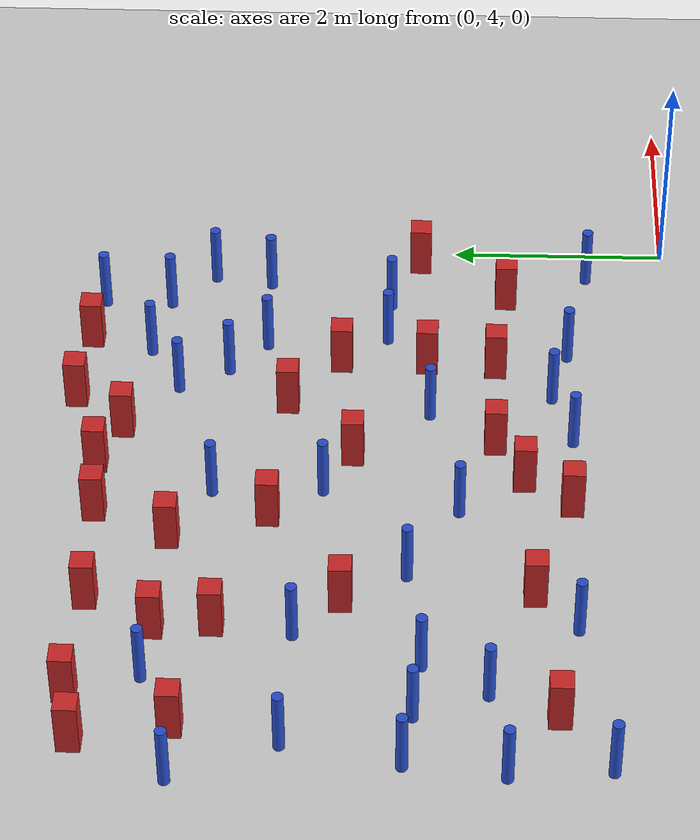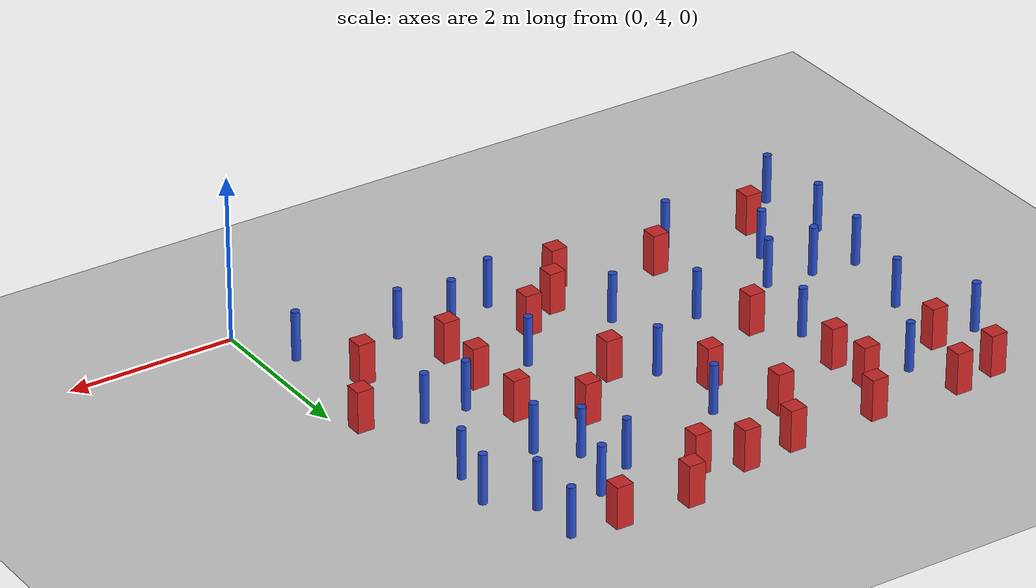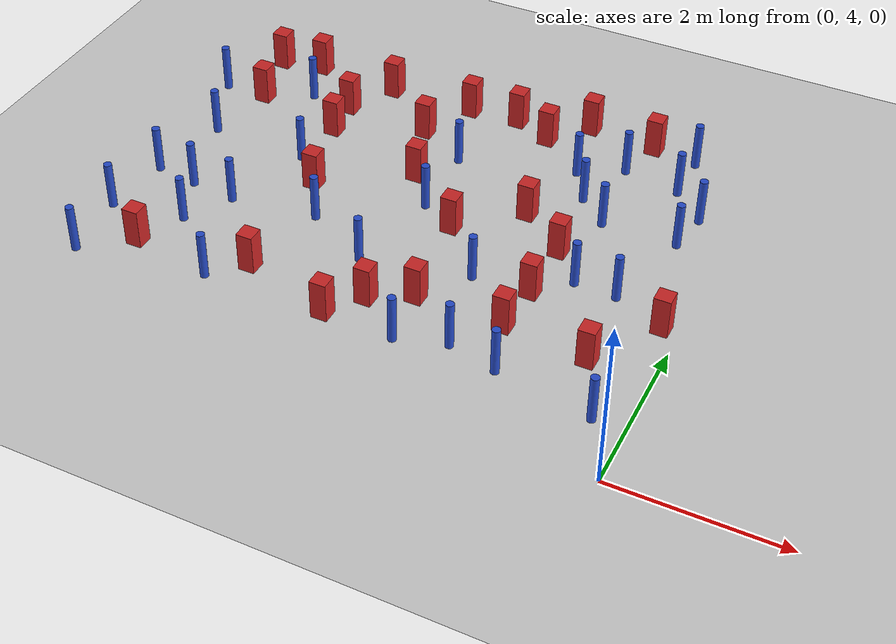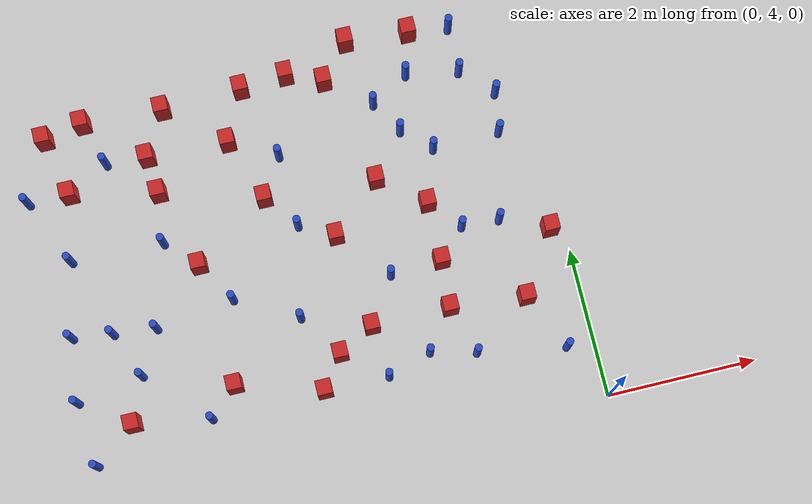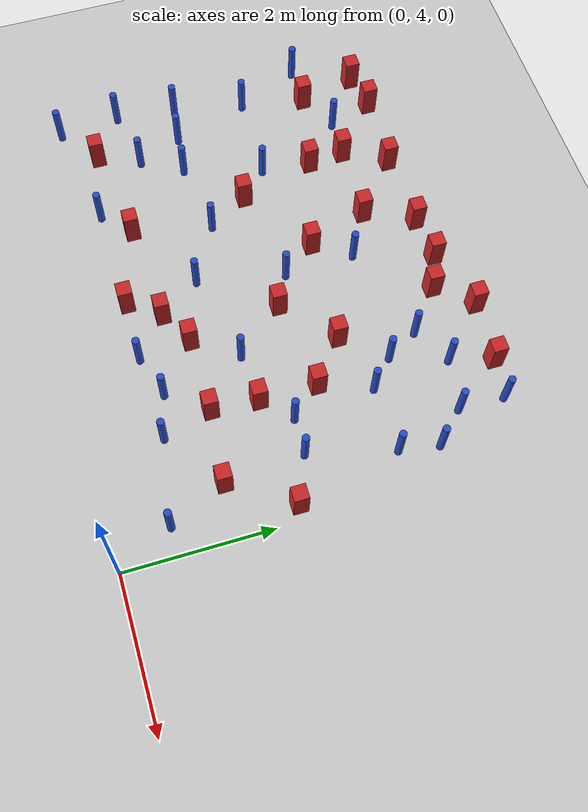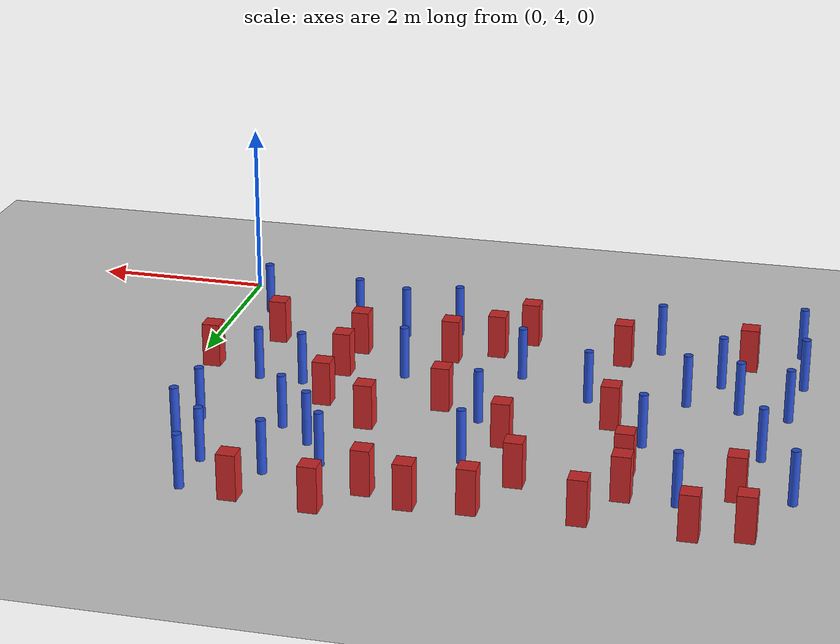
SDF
<sdf version="1.6">
 <world name="default">
  <model name="ground_plane">
   <static>1</static>
   <link name="link">
    <collision name="collision">
     <geometry><plane><normal>0 0 1</normal><size>100 100</size></plane></geometry>
     <surface><friction><ode><mu>100</mu><mu2>50</mu2></ode></friction></surface>
    </collision>
    <visual name="visual">
     <cast_shadows>0</cast_shadows>
     <geometry><plane><normal>0 0 1</normal><size>100 100</size></plane></geometry>
     <material>
      <ambient>1.0 1.0 1.0 1.0</ambient>
      <diffuse>0.8 0.8 0.8 1.0</diffuse>
      <specular>0.01 0.01 0.01 1.000000</specular>
     </material>
    </visual>
   </link>
  </model>
  <model name="pole_obstacle1">
   <static>true</static>
   <pose>-1.56777088744 8.84587682471 -9.47619616065e-06 5.49618799737e-07 2.36310414046e-07 -1.55090534809e-07</pose>
   <link name="link">
    <pose>0 0 0.3 0 -0 0</pose>
    <inertial>
     <mass>1</mass>
     <inertia><ixx>0.145833</ixx><ixy>0</ixy><ixz>0</ixz><iyy>0.145833</iyy><iyz>0</iyz><izz>0.125</izz></inertia>
    </inertial>
    <collision name="collision">
     <geometry><cylinder><radius>0.05</radius><length>.6</length></cylinder></geometry>
    </collision>
    <visual name="visual">
     <geometry><cylinder><radius>0.05</radius><length>.6</length></cylinder></geometry>
     <material>
      <script><name>Gazebo/Blue</name><uri>file://media/materials/scripts/gazebo.material</uri></script>
     </material>
    </visual>
   </link>
  </model>
  <model name="square_post_obstacle4">
   <static>true</static>
   <pose>-5.20350773241 8.5334468349 -6.11067671241e-07 -5.50515727128e-06 -8.79689657224e-07 2.37013304536e-05</pose>
   <link name="link">
    <pose>0 0 0.25 0 -0 0</pose>
    <inertial>
     <mass>100</mass>
     <inertia>
      <ixx>0.166667</ixx>
      <ixy>0</ixy>
      <ixz>0</ixz>
      <iyy>0.166667</iyy>
      <iyz>0</iyz>
      <izz>0.166667</izz>
     </inertia>
    </inertial>
    <collision name="collision"><geometry><box><size>.2 .2 .5</size></box></geometry></collision>
    <visual name="visual">
     <geometry><box><size>.2 .2 .5</size></box></geometry>
     <material>
      <script><name>Gazebo/Red</name><uri>file://media/materials/scripts/gazebo.material</uri></script>
     </material>
    </visual>
   </link>
  </model>
  <model name="square_post_obstacle9">
   <static>true</static>
   <pose>-2.26329625122 9.47919914897 -6.11067671241e-07 -5.50515727128e-06 -8.79689657224e-07 2.37013304536e-05</pose>
   <link name="link">
    <pose>0 0 0.25 0 -0 0</pose>
    <inertial>
     <mass>100</mass>
     <inertia>
      <ixx>0.166667</ixx>
      <ixy>0</ixy>
      <ixz>0</ixz>
      <iyy>0.166667</iyy>
      <iyz>0</iyz>
      <izz>0.166667</izz>
     </inertia>
    </inertial>
    <collision name="collision"><geometry><box><size>.2 .2 .5</size></box></geometry></collision>
    <visual name="visual">
     <geometry><box><size>.2 .2 .5</size></box></geometry>
     <material>
      <script><name>Gazebo/Red</name><uri>file://media/materials/scripts/gazebo.material</uri></script>
     </material>
    </visual>
   </link>
  </model>
  <model name="square_post_obstacle15">
   <static>true</static>
   <pose>-2.80714113025 5.61509971107 -6.11067671241e-07 -5.50515727128e-06 -8.79689657224e-07 2.37013304536e-05</pose>
   <link name="link">
    <pose>0 0 0.25 0 -0 0</pose>
    <inertial>
     <mass>100</mass>
     <inertia>
      <ixx>0.166667</ixx>
      <ixy>0</ixy>
      <ixz>0</ixz>
      <iyy>0.166667</iyy>
      <iyz>0</iyz>
      <izz>0.166667</izz>
     </inertia>
    </inertial>
    <collision name="collision"><geometry><box><size>.2 .2 .5</size></box></geometry></collision>
    <visual name="visual">
     <geometry><box><size>.2 .2 .5</size></box></geometry>
     <material>
      <script><name>Gazebo/Red</name><uri>file://media/materials/scripts/gazebo.material</uri></script>
     </material>
    </visual>
   </link>
  </model>
  <model name="square_post_obstacle18">
   <static>true</static>
   <pose>-4.72708501513 5.27083126233 -6.11067671241e-07 -5.50515727128e-06 -8.79689657224e-07 2.37013304536e-05</pose>
   <link name="link">
    <pose>0 0 0.25 0 -0 0</pose>
    <inertial>
     <mass>100</mass>
     <inertia>
      <ixx>0.166667</ixx>
      <ixy>0</ixy>
      <ixz>0</ixz>
      <iyy>0.166667</iyy>
      <iyz>0</iyz>
      <izz>0.166667</izz>
     </inertia>
    </inertial>
    <collision name="collision"><geometry><box><size>.2 .2 .5</size></box></geometry></collision>
    <visual name="visual">
     <geometry><box><size>.2 .2 .5</size></box></geometry>
     <material>
      <script><name>Gazebo/Red</name><uri>file://media/materials/scripts/gazebo.material</uri></script>
     </material>
    </visual>
   </link>
  </model>
  <model name="square_post_obstacle20">
   <static>true</static>
   <pose>-4.10968657314 8.48709137153 -6.11067671241e-07 -5.50515727128e-06 -8.79689657224e-07 2.37013304536e-05</pose>
   <link name="link">
    <pose>0 0 0.25 0 -0 0</pose>
    <inertial>
     <mass>100</mass>
     <inertia>
      <ixx>0.166667</ixx>
      <ixy>0</ixy>
      <ixz>0</ixz>
      <iyy>0.166667</iyy>
      <iyz>0</iyz>
      <izz>0.166667</izz>
     </inertia>
    </inertial>
    <collision name="collision"><geometry><box><size>.2 .2 .5</size></box></geometry></collision>
    <visual name="visual">
     <geometry><box><size>.2 .2 .5</size></box></geometry>
     <material>
      <script><name>Gazebo/Red</name><uri>file://media/materials/scripts/gazebo.material</uri></script>
     </material>
    </visual>
   </link>
  </model>
  <model name="square_post_obstacle26">
   <static>true</static>
   <pose>-2.99052652677 6.90192373108 -6.11067671241e-07 -5.50515727128e-06 -8.79689657224e-07 2.37013304536e-05</pose>
   <link name="link">
    <pose>0 0 0.25 0 -0 0</pose>
    <inertial>
     <mass>100</mass>
     <inertia>
      <ixx>0.166667</ixx>
      <ixy>0</ixy>
      <ixz>0</ixz>
      <iyy>0.166667</iyy>
      <iyz>0</iyz>
      <izz>0.166667</izz>
     </inertia>
    </inertial>
    <collision name="collision"><geometry><box><size>.2 .2 .5</size></box></geometry></collision>
    <visual name="visual">
     <geometry><box><size>.2 .2 .5</size></box></geometry>
     <material>
      <script><name>Gazebo/Red</name><uri>file://media/materials/scripts/gazebo.material</uri></script>
     </material>
    </visual>
   </link>
  </model>
  <model name="square_post_obstacle29">
   <static>true</static>
   <pose>-3.15361970309 9.21228666689 -6.11067671241e-07 -5.50515727128e-06 -8.79689657224e-07 2.37013304536e-05</pose>
   <link name="link">
    <pose>0 0 0.25 0 -0 0</pose>
    <inertial>
     <mass>100</mass>
     <inertia>
      <ixx>0.166667</ixx>
      <ixy>0</ixy>
      <ixz>0</ixz>
      <iyy>0.166667</iyy>
      <iyz>0</iyz>
      <izz>0.166667</izz>
     </inertia>
    </inertial>
    <collision name="collision"><geometry><box><size>.2 .2 .5</size></box></geometry></collision>
    <visual name="visual">
     <geometry><box><size>.2 .2 .5</size></box></geometry>
     <material>
      <script><name>Gazebo/Red</name><uri>file://media/materials/scripts/gazebo.material</uri></script>
     </material>
    </visual>
   </link>
  </model>
  <model name="square_post_obstacle31">
   <static>true</static>
   <pose>-1.40879890183 9.41600144967 -6.11067671241e-07 -5.50515727128e-06 -8.79689657224e-07 2.37013304536e-05</pose>
   <link name="link">
    <pose>0 0 0.25 0 -0 0</pose>
    <inertial>
     <mass>100</mass>
     <inertia>
      <ixx>0.166667</ixx>
      <ixy>0</ixy>
      <ixz>0</ixz>
      <iyy>0.166667</iyy>
      <iyz>0</iyz>
      <izz>0.166667</izz>
     </inertia>
    </inertial>
    <collision name="collision"><geometry><box><size>.2 .2 .5</size></box></geometry></collision>
    <visual name="visual">
     <geometry><box><size>.2 .2 .5</size></box></geometry>
     <material>
      <script><name>Gazebo/Red</name><uri>file://media/materials/scripts/gazebo.material</uri></script>
     </material>
    </visual>
   </link>
  </model>
  <model name="pole_obstacle25">
   <static>true</static>
   <pose>-0.854031839209 9.34923897884 -9.47619616065e-06 5.49618799737e-07 2.36310414038e-07 -1.55090534813e-07</pose>
   <link name="link">
    <pose>0 0 0.3 0 -0 0</pose>
    <inertial>
     <mass>1</mass>
     <inertia><ixx>0.145833</ixx><ixy>0</ixy><ixz>0</ixz><iyy>0.145833</iyy><iyz>0</iyz><izz>0.125</izz></inertia>
    </inertial>
    <collision name="collision">
     <geometry><cylinder><radius>0.05</radius><length>.6</length></cylinder></geometry>
    </collision>
    <visual name="visual">
     <geometry><cylinder><radius>0.05</radius><length>.6</length></cylinder></geometry>
     <material>
      <script><name>Gazebo/Blue</name><uri>file://media/materials/scripts/gazebo.material</uri></script>
     </material>
    </visual>
   </link>
  </model>
  <model name="pole_obstacle28">
   <static>true</static>
   <pose>-1.54285895914 4.94095196369 -9.47619616065e-06 5.49618799737e-07 2.36310414061e-07 -1.550905348e-07</pose>
   <link name="link">
    <pose>0 0 0.3 0 -0 0</pose>
    <inertial>
     <mass>1</mass>
     <inertia><ixx>0.145833</ixx><ixy>0</ixy><ixz>0</ixz><iyy>0.145833</iyy><iyz>0</iyz><izz>0.125</izz></inertia>
    </inertial>
    <collision name="collision">
     <geometry><cylinder><radius>0.05</radius><length>.6</length></cylinder></geometry>
    </collision>
    <visual name="visual">
     <geometry><cylinder><radius>0.05</radius><length>.6</length></cylinder></geometry>
     <material>
      <script><name>Gazebo/Blue</name><uri>file://media/materials/scripts/gazebo.material</uri></script>
     </material>
    </visual>
   </link>
  </model>
  <model name="pole_obstacle36">
   <static>true</static>
   <pose>-3.48432030494 8.14019870733 -9.47619616065e-06 5.49618799738e-07 2.36310414059e-07 -1.55090534802e-07</pose>
   <link name="link">
    <pose>0 0 0.3 0 -0 0</pose>
    <inertial>
     <mass>1</mass>
     <inertia><ixx>0.145833</ixx><ixy>0</ixy><ixz>0</ixz><iyy>0.145833</iyy><iyz>0</iyz><izz>0.125</izz></inertia>
    </inertial>
    <collision name="collision">
     <geometry><cylinder><radius>0.05</radius><length>.6</length></cylinder></geometry>
    </collision>
    <visual name="visual">
     <geometry><cylinder><radius>0.05</radius><length>.6</length></cylinder></geometry>
     <material>
      <script><name>Gazebo/Blue</name><uri>file://media/materials/scripts/gazebo.material</uri></script>
     </material>
    </visual>
   </link>
  </model>
  <model name="pole_obstacle38">
   <static>true</static>
   <pose>-1.45010936316 7.75743445892 -9.47619616065e-06 5.49618799737e-07 2.36310414061e-07 -1.550905348e-07</pose>
   <link name="link">
    <pose>0 0 0.3 0 -0 0</pose>
    <inertial>
     <mass>1</mass>
     <inertia><ixx>0.145833</ixx><ixy>0</ixy><ixz>0</ixz><iyy>0.145833</iyy><iyz>0</iyz><izz>0.125</izz></inertia>
    </inertial>
    <collision name="collision">
     <geometry><cylinder><radius>0.05</radius><length>.6</length></cylinder></geometry>
    </collision>
    <visual name="visual">
     <geometry><cylinder><radius>0.05</radius><length>.6</length></cylinder></geometry>
     <material>
      <script><name>Gazebo/Blue</name><uri>file://media/materials/scripts/gazebo.material</uri></script>
     </material>
    </visual>
   </link>
  </model>
  <model name="pole_obstacle39">
   <static>true</static>
   <pose>-0.539554813916 7.77577279398 -9.47619616065e-06 5.49618799737e-07 2.36310414069e-07 -1.55090534794e-07</pose>
   <link name="link">
    <pose>0 0 0.3 0 -0 0</pose>
    <inertial>
     <mass>1</mass>
     <inertia><ixx>0.145833</ixx><ixy>0</ixy><ixz>0</ixz><iyy>0.145833</iyy><iyz>0</iyz><izz>0.125</izz></inertia>
    </inertial>
    <collision name="collision">
     <geometry><cylinder><radius>0.05</radius><length>.6</length></cylinder></geometry>
    </collision>
    <visual name="visual">
     <geometry><cylinder><radius>0.05</radius><length>.6</length></cylinder></geometry>
     <material>
      <script><name>Gazebo/Blue</name><uri>file://media/materials/scripts/gazebo.material</uri></script>
     </material>
    </visual>
   </link>
  </model>
  <model name="pole_obstacle50">
   <static>true</static>
   <pose>-5.10855099215 4.90134940927 -9.47619616065e-06 5.49618799737e-07 2.36310414037e-07 -1.55090534814e-07</pose>
   <link name="link">
    <pose>0 0 0.3 0 -0 0</pose>
    <inertial>
     <mass>1</mass>
     <inertia><ixx>0.145833</ixx><ixy>0</ixy><ixz>0</ixz><iyy>0.145833</iyy><iyz>0</iyz><izz>0.125</izz></inertia>
    </inertial>
    <collision name="collision">
     <geometry><cylinder><radius>0.05</radius><length>.6</length></cylinder></geometry>
    </collision>
    <visual name="visual">
     <geometry><cylinder><radius>0.05</radius><length>.6</length></cylinder></geometry>
     <material>
      <script><name>Gazebo/Blue</name><uri>file://media/materials/scripts/gazebo.material</uri></script>
     </material>
    </visual>
   </link>
  </model>
  <model name="pole_obstacle61">
   <static>true</static>
   <pose>-6.68802483344 4.64940047304 -9.47619616065e-06 5.49618799737e-07 2.36310414037e-07 -1.55090534814e-07</pose>
   <link name="link">
    <pose>0 0 0.3 0 -0 0</pose>
    <inertial>
     <mass>1</mass>
     <inertia><ixx>0.145833</ixx><ixy>0</ixy><ixz>0</ixz><iyy>0.145833</iyy><iyz>0</iyz><izz>0.125</izz></inertia>
    </inertial>
    <collision name="collision">
     <geometry><cylinder><radius>0.05</radius><length>.6</length></cylinder></geometry>
    </collision>
    <visual name="visual">
     <geometry><cylinder><radius>0.05</radius><length>.6</length></cylinder></geometry>
     <material>
      <script><name>Gazebo/Blue</name><uri>file://media/materials/scripts/gazebo.material</uri></script>
     </material>
    </visual>
   </link>
  </model>
  <model name="square_post_obstacle66">
   <static>true</static>
   <pose>-0.202401100818 6.34063433025 -6.11067671241e-07 -5.50515727128e-06 -8.79689657224e-07 2.37013304536e-05</pose>
   <link name="link">
    <pose>0 0 0.25 0 -0 0</pose>
    <inertial>
     <mass>100</mass>
     <inertia>
      <ixx>0.166667</ixx>
      <ixy>0</ixy>
      <ixz>0</ixz>
      <iyy>0.166667</iyy>
      <iyz>0</iyz>
      <izz>0.166667</izz>
     </inertia>
    </inertial>
    <collision name="collision"><geometry><box><size>.2 .2 .5</size></box></geometry></collision>
    <visual name="visual">
     <geometry><box><size>.2 .2 .5</size></box></geometry>
     <material>
      <script><name>Gazebo/Red</name><uri>file://media/materials/scripts/gazebo.material</uri></script>
     </material>
    </visual>
   </link>
  </model>
  <model name="square_post_obstacle67">
   <static>true</static>
   <pose>-3.60193597629 4.92999518019 -6.11067671241e-07 -5.50515727128e-06 -8.79689657224e-07 2.37013304536e-05</pose>
   <link name="link">
    <pose>0 0 0.25 0 -0 0</pose>
    <inertial>
     <mass>100</mass>
     <inertia>
      <ixx>0.166667</ixx>
      <ixy>0</ixy>
      <ixz>0</ixz>
      <iyy>0.166667</iyy>
      <iyz>0</iyz>
      <izz>0.166667</izz>
     </inertia>
    </inertial>
    <collision name="collision"><geometry><box><size>.2 .2 .5</size></box></geometry></collision>
    <visual name="visual">
     <geometry><box><size>.2 .2 .5</size></box></geometry>
     <material>
      <script><name>Gazebo/Red</name><uri>file://media/materials/scripts/gazebo.material</uri></script>
     </material>
    </visual>
   </link>
  </model>
  <model name="square_post_obstacle70">
   <static>true</static>
   <pose>-1.70229956744 7.04993135914 -6.11067671241e-07 -5.50515727128e-06 -8.79689657224e-07 2.37013304536e-05</pose>
   <link name="link">
    <pose>0 0 0.25 0 -0 0</pose>
    <inertial>
     <mass>100</mass>
     <inertia>
      <ixx>0.166667</ixx>
      <ixy>0</ixy>
      <ixz>0</ixz>
      <iyy>0.166667</iyy>
      <iyz>0</iyz>
      <izz>0.166667</izz>
     </inertia>
    </inertial>
    <collision name="collision"><geometry><box><size>.2 .2 .5</size></box></geometry></collision>
    <visual name="visual">
     <geometry><box><size>.2 .2 .5</size></box></geometry>
     <material>
      <script><name>Gazebo/Red</name><uri>file://media/materials/scripts/gazebo.material</uri></script>
     </material>
    </visual>
   </link>
  </model>
  <model name="square_post_obstacle72">
   <static>true</static>
   <pose>-3.78200665676 9.16442955943 -6.11067671241e-07 -5.50515727128e-06 -8.79689657224e-07 2.37013304536e-05</pose>
   <link name="link">
    <pose>0 0 0.25 0 -0 0</pose>
    <inertial>
     <mass>100</mass>
     <inertia>
      <ixx>0.166667</ixx>
      <ixy>0</ixy>
      <ixz>0</ixz>
      <iyy>0.166667</iyy>
      <iyz>0</iyz>
      <izz>0.166667</izz>
     </inertia>
    </inertial>
    <collision name="collision"><geometry><box><size>.2 .2 .5</size></box></geometry></collision>
    <visual name="visual">
     <geometry><box><size>.2 .2 .5</size></box></geometry>
     <material>
      <script><name>Gazebo/Red</name><uri>file://media/materials/scripts/gazebo.material</uri></script>
     </material>
    </visual>
   </link>
  </model>
  <model name="square_post_obstacle73">
   <static>true</static>
   <pose>-0.733968067828 5.51810698978 -6.11067671241e-07 -5.50515727128e-06 -8.79689657224e-07 2.37013304536e-05</pose>
   <link name="link">
    <pose>0 0 0.25 0 -0 0</pose>
    <inertial>
     <mass>100</mass>
     <inertia>
      <ixx>0.166667</ixx>
      <ixy>0</ixy>
      <ixz>0</ixz>
      <iyy>0.166667</iyy>
      <iyz>0</iyz>
      <izz>0.166667</izz>
     </inertia>
    </inertial>
    <collision name="collision"><geometry><box><size>.2 .2 .5</size></box></geometry></collision>
    <visual name="visual">
     <geometry><box><size>.2 .2 .5</size></box></geometry>
     <material>
      <script><name>Gazebo/Red</name><uri>file://media/materials/scripts/gazebo.material</uri></script>
     </material>
    </visual>
   </link>
  </model>
  <model name="pole_obstacle71">
   <static>true</static>
   <pose>-5.23678826117 7.33287058431 -9.47619616065e-06 5.49618799737e-07 2.36310414037e-07 -1.55090534814e-07</pose>
   <link name="link">
    <pose>0 0 0.3 0 -0 0</pose>
    <inertial>
     <mass>1</mass>
     <inertia><ixx>0.145833</ixx><ixy>0</ixy><ixz>0</ixz><iyy>0.145833</iyy><iyz>0</iyz><izz>0.125</izz></inertia>
    </inertial>
    <collision name="collision">
     <geometry><cylinder><radius>0.05</radius><length>.6</length></cylinder></geometry>
    </collision>
    <visual name="visual">
     <geometry><cylinder><radius>0.05</radius><length>.6</length></cylinder></geometry>
     <material>
      <script><name>Gazebo/Blue</name><uri>file://media/materials/scripts/gazebo.material</uri></script>
     </material>
    </visual>
   </link>
  </model>
  <model name="pole_obstacle72">
   <static>true</static>
   <pose>-6.77194155859 5.51362866444 -9.47619616065e-06 5.49618799737e-07 2.36310414037e-07 -1.55090534814e-07</pose>
   <link name="link">
    <pose>0 0 0.3 0 -0 0</pose>
    <inertial>
     <mass>1</mass>
     <inertia><ixx>0.145833</ixx><ixy>0</ixy><ixz>0</ixz><iyy>0.145833</iyy><iyz>0</iyz><izz>0.125</izz></inertia>
    </inertial>
    <collision name="collision">
     <geometry><cylinder><radius>0.05</radius><length>.6</length></cylinder></geometry>
    </collision>
    <visual name="visual">
     <geometry><cylinder><radius>0.05</radius><length>.6</length></cylinder></geometry>
     <material>
      <script><name>Gazebo/Blue</name><uri>file://media/materials/scripts/gazebo.material</uri></script>
     </material>
    </visual>
   </link>
  </model>
  <model name="pole_obstacle76">
   <static>true</static>
   <pose>-2.14436373362 5.08914590252 -9.47619616065e-06 5.49618799738e-07 2.3631041406e-07 -1.55090534801e-07</pose>
   <link name="link">
    <pose>0 0 0.3 0 -0 0</pose>
    <inertial>
     <mass>1</mass>
     <inertia><ixx>0.145833</ixx><ixy>0</ixy><ixz>0</ixz><iyy>0.145833</iyy><iyz>0</iyz><izz>0.125</izz></inertia>
    </inertial>
    <collision name="collision">
     <geometry><cylinder><radius>0.05</radius><length>.6</length></cylinder></geometry>
    </collision>
    <visual name="visual">
     <geometry><cylinder><radius>0.05</radius><length>.6</length></cylinder></geometry>
     <material>
      <script><name>Gazebo/Blue</name><uri>file://media/materials/scripts/gazebo.material</uri></script>
     </material>
    </visual>
   </link>
  </model>
  <model name="pole_obstacle81">
   <static>true</static>
   <pose>-4.50438971074 6.37738187123 -9.47619616065e-06 5.49618799737e-07 2.36310414037e-07 -1.55090534814e-07</pose>
   <link name="link">
    <pose>0 0 0.3 0 -0 0</pose>
    <inertial>
     <mass>1</mass>
     <inertia><ixx>0.145833</ixx><ixy>0</ixy><ixz>0</ixz><iyy>0.145833</iyy><iyz>0</iyz><izz>0.125</izz></inertia>
    </inertial>
    <collision name="collision">
     <geometry><cylinder><radius>0.05</radius><length>.6</length></cylinder></geometry>
    </collision>
    <visual name="visual">
     <geometry><cylinder><radius>0.05</radius><length>.6</length></cylinder></geometry>
     <material>
      <script><name>Gazebo/Blue</name><uri>file://media/materials/scripts/gazebo.material</uri></script>
     </material>
    </visual>
   </link>
  </model>
  <model name="pole_obstacle85">
   <static>true</static>
   <pose>-5.75798822762 8.57239458698 -9.47619616065e-06 5.49618799737e-07 2.36310414065e-07 -1.55090534796e-07</pose>
   <link name="link">
    <pose>0 0 0.3 0 -0 0</pose>
    <inertial>
     <mass>1</mass>
     <inertia><ixx>0.145833</ixx><ixy>0</ixy><ixz>0</ixz><iyy>0.145833</iyy><iyz>0</iyz><izz>0.125</izz></inertia>
    </inertial>
    <collision name="collision">
     <geometry><cylinder><radius>0.05</radius><length>.6</length></cylinder></geometry>
    </collision>
    <visual name="visual">
     <geometry><cylinder><radius>0.05</radius><length>.6</length></cylinder></geometry>
     <material>
      <script><name>Gazebo/Blue</name><uri>file://media/materials/scripts/gazebo.material</uri></script>
     </material>
    </visual>
   </link>
  </model>
  <model name="pole_obstacle87">
   <static>true</static>
   <pose>-1.33567638175 6.62933969269 -9.47619616065e-06 5.49618799737e-07 2.36310414061e-07 -1.550905348e-07</pose>
   <link name="link">
    <pose>0 0 0.3 0 -0 0</pose>
    <inertial>
     <mass>1</mass>
     <inertia><ixx>0.145833</ixx><ixy>0</ixy><ixz>0</ixz><iyy>0.145833</iyy><iyz>0</iyz><izz>0.125</izz></inertia>
    </inertial>
    <collision name="collision">
     <geometry><cylinder><radius>0.05</radius><length>.6</length></cylinder></geometry>
    </collision>
    <visual name="visual">
     <geometry><cylinder><radius>0.05</radius><length>.6</length></cylinder></geometry>
     <material>
      <script><name>Gazebo/Blue</name><uri>file://media/materials/scripts/gazebo.material</uri></script>
     </material>
    </visual>
   </link>
  </model>
  <model name="pole_obstacle97">
   <static>true</static>
   <pose>-0.374859059351 4.74087355722 -9.47619616065e-06 5.49618799737e-07 2.36310414065e-07 -1.55090534796e-07</pose>
   <link name="link">
    <pose>0 0 0.3 0 -0 0</pose>
    <inertial>
     <mass>1</mass>
     <inertia><ixx>0.145833</ixx><ixy>0</ixy><ixz>0</ixz><iyy>0.145833</iyy><iyz>0</iyz><izz>0.125</izz></inertia>
    </inertial>
    <collision name="collision">
     <geometry><cylinder><radius>0.05</radius><length>.6</length></cylinder></geometry>
    </collision>
    <visual name="visual">
     <geometry><cylinder><radius>0.05</radius><length>.6</length></cylinder></geometry>
     <material>
      <script><name>Gazebo/Blue</name><uri>file://media/materials/scripts/gazebo.material</uri></script>
     </material>
    </visual>
   </link>
  </model>
  <model name="pole_obstacle104">
   <static>true</static>
   <pose>-0.828088249657 6.60776617797 -9.47619616065e-06 5.49618799737e-07 2.36310414065e-07 -1.55090534796e-07</pose>
   <link name="link">
    <pose>0 0 0.3 0 -0 0</pose>
    <inertial>
     <mass>1</mass>
     <inertia><ixx>0.145833</ixx><ixy>0</ixy><ixz>0</ixz><iyy>0.145833</iyy><iyz>0</iyz><izz>0.125</izz></inertia>
    </inertial>
    <collision name="collision">
     <geometry><cylinder><radius>0.05</radius><length>.6</length></cylinder></geometry>
    </collision>
    <visual name="visual">
     <geometry><cylinder><radius>0.05</radius><length>.6</length></cylinder></geometry>
     <material>
      <script><name>Gazebo/Blue</name><uri>file://media/materials/scripts/gazebo.material</uri></script>
     </material>
    </visual>
   </link>
  </model>
  <model name="square_post_obstacle95">
   <static>true</static>
   <pose>-4.87118493448 9.12853823081 -6.11067671241e-07 -5.50515727128e-06 -8.79689657224e-07 2.37013304536e-05</pose>
   <link name="link">
    <pose>0 0 0.25 0 -0 0</pose>
    <inertial>
     <mass>100</mass>
     <inertia>
      <ixx>0.166667</ixx>
      <ixy>0</ixy>
      <ixz>0</ixz>
      <iyy>0.166667</iyy>
      <iyz>0</iyz>
      <izz>0.166667</izz>
     </inertia>
    </inertial>
    <collision name="collision"><geometry><box><size>.2 .2 .5</size></box></geometry></collision>
    <visual name="visual">
     <geometry><box><size>.2 .2 .5</size></box></geometry>
     <material>
      <script><name>Gazebo/Red</name><uri>file://media/materials/scripts/gazebo.material</uri></script>
     </material>
    </visual>
   </link>
  </model>
  <model name="pole_obstacle112">
   <static>true</static>
   <pose>-0.859327122731 8.71745714553 -9.47619616065e-06 5.49618799737e-07 2.36310414038e-07 -1.55090534813e-07</pose>
   <link name="link">
    <pose>0 0 0.3 0 -0 0</pose>
    <inertial>
     <mass>1</mass>
     <inertia><ixx>0.145833</ixx><ixy>0</ixy><ixz>0</ixz><iyy>0.145833</iyy><iyz>0</iyz><izz>0.125</izz></inertia>
    </inertial>
    <collision name="collision">
     <geometry><cylinder><radius>0.05</radius><length>.6</length></cylinder></geometry>
    </collision>
    <visual name="visual">
     <geometry><cylinder><radius>0.05</radius><length>.6</length></cylinder></geometry>
     <material>
      <script><name>Gazebo/Blue</name><uri>file://media/materials/scripts/gazebo.material</uri></script>
     </material>
    </visual>
   </link>
  </model>
  <model name="square_post_obstacle117">
   <static>true</static>
   <pose>-6.49248743148 9.08472322699 -6.11067671241e-07 -5.50515727128e-06 -8.79689657224e-07 2.37013304536e-05</pose>
   <link name="link">
    <pose>0 0 0.25 0 -0 0</pose>
    <inertial>
     <mass>100</mass>
     <inertia>
      <ixx>0.166667</ixx>
      <ixy>0</ixy>
      <ixz>0</ixz>
      <iyy>0.166667</iyy>
      <iyz>0</iyz>
      <izz>0.166667</izz>
     </inertia>
    </inertial>
    <collision name="collision"><geometry><box><size>.2 .2 .5</size></box></geometry></collision>
    <visual name="visual">
     <geometry><box><size>.2 .2 .5</size></box></geometry>
     <material>
      <script><name>Gazebo/Red</name><uri>file://media/materials/scripts/gazebo.material</uri></script>
     </material>
    </visual>
   </link>
  </model>
  <model name="square_post_obstacle122">
   <static>true</static>
   <pose>-1.74911216292 5.61455090223 -6.11067671241e-07 -5.50515727128e-06 -8.79689657224e-07 2.37013304536e-05</pose>
   <link name="link">
    <pose>0 0 0.25 0 -0 0</pose>
    <inertial>
     <mass>100</mass>
     <inertia>
      <ixx>0.166667</ixx>
      <ixy>0</ixy>
      <ixz>0</ixz>
      <iyy>0.166667</iyy>
      <iyz>0</iyz>
      <izz>0.166667</izz>
     </inertia>
    </inertial>
    <collision name="collision"><geometry><box><size>.2 .2 .5</size></box></geometry></collision>
    <visual name="visual">
     <geometry><box><size>.2 .2 .5</size></box></geometry>
     <material>
      <script><name>Gazebo/Red</name><uri>file://media/materials/scripts/gazebo.material</uri></script>
     </material>
    </visual>
   </link>
  </model>
  <model name="pole_obstacle139">
   <static>true</static>
   <pose>-5.56402424172 6.2351332192 -9.47619616065e-06 5.49618799737e-07 2.36310414037e-07 -1.55090534814e-07</pose>
   <link name="link">
    <pose>0 0 0.3 0 -0 0</pose>
    <inertial>
     <mass>1</mass>
     <inertia><ixx>0.145833</ixx><ixy>0</ixy><ixz>0</ixz><iyy>0.145833</iyy><iyz>0</iyz><izz>0.125</izz></inertia>
    </inertial>
    <collision name="collision">
     <geometry><cylinder><radius>0.05</radius><length>.6</length></cylinder></geometry>
    </collision>
    <visual name="visual">
     <geometry><cylinder><radius>0.05</radius><length>.6</length></cylinder></geometry>
     <material>
      <script><name>Gazebo/Blue</name><uri>file://media/materials/scripts/gazebo.material</uri></script>
     </material>
    </visual>
   </link>
  </model>
  <model name="pole_obstacle141">
   <static>true</static>
   <pose>-3.4473269969 7.14844717372 -9.47619616065e-06 5.49618799738e-07 2.3631041406e-07 -1.55090534801e-07</pose>
   <link name="link">
    <pose>0 0 0.3 0 -0 0</pose>
    <inertial>
     <mass>1</mass>
     <inertia><ixx>0.145833</ixx><ixy>0</ixy><ixz>0</ixz><iyy>0.145833</iyy><iyz>0</iyz><izz>0.125</izz></inertia>
    </inertial>
    <collision name="collision">
     <geometry><cylinder><radius>0.05</radius><length>.6</length></cylinder></geometry>
    </collision>
    <visual name="visual">
     <geometry><cylinder><radius>0.05</radius><length>.6</length></cylinder></geometry>
     <material>
      <script><name>Gazebo/Blue</name><uri>file://media/materials/scripts/gazebo.material</uri></script>
     </material>
    </visual>
   </link>
  </model>
  <model name="square_post_obstacle128">
   <static>true</static>
   <pose>-6.12468503726 5.08207989902 -6.11067671241e-07 -5.50515727128e-06 -8.79689657224e-07 2.37013304536e-05</pose>
   <link name="link">
    <pose>0 0 0.25 0 -0 0</pose>
    <inertial>
     <mass>100</mass>
     <inertia>
      <ixx>0.166667</ixx>
      <ixy>0</ixy>
      <ixz>0</ixz>
      <iyy>0.166667</iyy>
      <iyz>0</iyz>
      <izz>0.166667</izz>
     </inertia>
    </inertial>
    <collision name="collision"><geometry><box><size>.2 .2 .5</size></box></geometry></collision>
    <visual name="visual">
     <geometry><box><size>.2 .2 .5</size></box></geometry>
     <material>
      <script><name>Gazebo/Red</name><uri>file://media/materials/scripts/gazebo.material</uri></script>
     </material>
    </visual>
   </link>
  </model>
  <model name="pole_obstacle147">
   <static>true</static>
   <pose>-6.47764019402 7.37412107264 -9.47619616065e-06 5.49618799737e-07 2.36310414037e-07 -1.55090534814e-07</pose>
   <link name="link">
    <pose>0 0 0.3 0 -0 0</pose>
    <inertial>
     <mass>1</mass>
     <inertia><ixx>0.145833</ixx><ixy>0</ixy><ixz>0</ixz><iyy>0.145833</iyy><iyz>0</iyz><izz>0.125</izz></inertia>
    </inertial>
    <collision name="collision">
     <geometry><cylinder><radius>0.05</radius><length>.6</length></cylinder></geometry>
    </collision>
    <visual name="visual">
     <geometry><cylinder><radius>0.05</radius><length>.6</length></cylinder></geometry>
     <material>
      <script><name>Gazebo/Blue</name><uri>file://media/materials/scripts/gazebo.material</uri></script>
     </material>
    </visual>
   </link>
  </model>
  <model name="square_post_obstacle138">
   <static>true</static>
   <pose>-2.29610386684 7.52260838287 -6.11067671241e-07 -5.50515727128e-06 -8.79689657224e-07 2.37013304536e-05</pose>
   <link name="link">
    <pose>0 0 0.25 0 -0 0</pose>
    <inertial>
     <mass>100</mass>
     <inertia>
      <ixx>0.166667</ixx>
      <ixy>0</ixy>
      <ixz>0</ixz>
      <iyy>0.166667</iyy>
      <iyz>0</iyz>
      <izz>0.166667</izz>
     </inertia>
    </inertial>
    <collision name="collision"><geometry><box><size>.2 .2 .5</size></box></geometry></collision>
    <visual name="visual">
     <geometry><box><size>.2 .2 .5</size></box></geometry>
     <material>
      <script><name>Gazebo/Red</name><uri>file://media/materials/scripts/gazebo.material</uri></script>
     </material>
    </visual>
   </link>
  </model>
  <model name="pole_obstacle152">
   <static>true</static>
   <pose>-2.40180342491 6.21374365525 -9.47619616065e-06 5.49618799738e-07 2.3631041406e-07 -1.55090534801e-07</pose>
   <link name="link">
    <pose>0 0 0.3 0 -0 0</pose>
    <inertial>
     <mass>1</mass>
     <inertia><ixx>0.145833</ixx><ixy>0</ixy><ixz>0</ixz><iyy>0.145833</iyy><iyz>0</iyz><izz>0.125</izz></inertia>
    </inertial>
    <collision name="collision">
     <geometry><cylinder><radius>0.05</radius><length>.6</length></cylinder></geometry>
    </collision>
    <visual name="visual">
     <geometry><cylinder><radius>0.05</radius><length>.6</length></cylinder></geometry>
     <material>
      <script><name>Gazebo/Blue</name><uri>file://media/materials/scripts/gazebo.material</uri></script>
     </material>
    </visual>
   </link>
  </model>
  <model name="square_post_obstacle144">
   <static>true</static>
   <pose>-5.15633529697 8.02096826196 -6.11067671241e-07 -5.50515727128e-06 -8.79689657224e-07 2.37013304536e-05</pose>
   <link name="link">
    <pose>0 0 0.25 0 -0 0</pose>
    <inertial>
     <mass>100</mass>
     <inertia>
      <ixx>0.166667</ixx>
      <ixy>0</ixy>
      <ixz>0</ixz>
      <iyy>0.166667</iyy>
      <iyz>0</iyz>
      <izz>0.166667</izz>
     </inertia>
    </inertial>
    <collision name="collision"><geometry><box><size>.2 .2 .5</size></box></geometry></collision>
    <visual name="visual">
     <geometry><box><size>.2 .2 .5</size></box></geometry>
     <material>
      <script><name>Gazebo/Red</name><uri>file://media/materials/scripts/gazebo.material</uri></script>
     </material>
    </visual>
   </link>
  </model>
  <model name="pole_obstacle155">
   <static>true</static>
   <pose>-2.7373386787 4.90528923805 -9.47619616065e-06 5.49618799738e-07 2.3631041406e-07 -1.55090534801e-07</pose>
   <link name="link">
    <pose>0 0 0.3 0 -0 0</pose>
    <inertial>
     <mass>1</mass>
     <inertia><ixx>0.145833</ixx><ixy>0</ixy><ixz>0</ixz><iyy>0.145833</iyy><iyz>0</iyz><izz>0.125</izz></inertia>
    </inertial>
    <collision name="collision">
     <geometry><cylinder><radius>0.05</radius><length>.6</length></cylinder></geometry>
    </collision>
    <visual name="visual">
     <geometry><cylinder><radius>0.05</radius><length>.6</length></cylinder></geometry>
     <material>
      <script><name>Gazebo/Blue</name><uri>file://media/materials/scripts/gazebo.material</uri></script>
     </material>
    </visual>
   </link>
  </model>
  <model name="square_post_obstacle161">
   <static>true</static>
   <pose>-4.84121746264 6.9401007804 -6.11067671241e-07 -5.50515727128e-06 -8.79689657224e-07 2.37013304536e-05</pose>
   <link name="link">
    <pose>0 0 0.25 0 -0 0</pose>
    <inertial>
     <mass>100</mass>
     <inertia>
      <ixx>0.166667</ixx>
      <ixy>0</ixy>
      <ixz>0</ixz>
      <iyy>0.166667</iyy>
      <iyz>0</iyz>
      <izz>0.166667</izz>
     </inertia>
    </inertial>
    <collision name="collision"><geometry><box><size>.2 .2 .5</size></box></geometry></collision>
    <visual name="visual">
     <geometry><box><size>.2 .2 .5</size></box></geometry>
     <material>
      <script><name>Gazebo/Red</name><uri>file://media/materials/scripts/gazebo.material</uri></script>
     </material>
    </visual>
   </link>
  </model>
  <model name="pole_obstacle171">
   <static>true</static>
   <pose>-6.13674973624 6.29497976667 -9.47619616065e-06 5.49618799737e-07 2.36310414037e-07 -1.55090534814e-07</pose>
   <link name="link">
    <pose>0 0 0.3 0 -0 0</pose>
    <inertial>
     <mass>1</mass>
     <inertia><ixx>0.145833</ixx><ixy>0</ixy><ixz>0</ixz><iyy>0.145833</iyy><iyz>0</iyz><izz>0.125</izz></inertia>
    </inertial>
    <collision name="collision">
     <geometry><cylinder><radius>0.05</radius><length>.6</length></cylinder></geometry>
    </collision>
    <visual name="visual">
     <geometry><cylinder><radius>0.05</radius><length>.6</length></cylinder></geometry>
     <material>
      <script><name>Gazebo/Blue</name><uri>file://media/materials/scripts/gazebo.material</uri></script>
     </material>
    </visual>
   </link>
  </model>
  <model name="square_post_obstacle179">
   <static>true</static>
   <pose>-3.29234738773 5.35406748579 -6.11067671241e-07 -5.50515727128e-06 -8.79689657224e-07 2.37013304536e-05</pose>
   <link name="link">
    <pose>0 0 0.25 0 -0 0</pose>
    <inertial>
     <mass>100</mass>
     <inertia>
      <ixx>0.166667</ixx>
      <ixy>0</ixy>
      <ixz>0</ixz>
      <iyy>0.166667</iyy>
      <iyz>0</iyz>
      <izz>0.166667</izz>
     </inertia>
    </inertial>
    <collision name="collision"><geometry><box><size>.2 .2 .5</size></box></geometry></collision>
    <visual name="visual">
     <geometry><box><size>.2 .2 .5</size></box></geometry>
     <material>
      <script><name>Gazebo/Red</name><uri>file://media/materials/scripts/gazebo.material</uri></script>
     </material>
    </visual>
   </link>
  </model>
  <model name="square_post_obstacle184">
   <static>true</static>
   <pose>-6.31408466717 8.2761380704 -6.11067671241e-07 -5.50515727128e-06 -8.79689657224e-07 2.37013304536e-05</pose>
   <link name="link">
    <pose>0 0 0.25 0 -0 0</pose>
    <inertial>
     <mass>100</mass>
     <inertia>
      <ixx>0.166667</ixx>
      <ixy>0</ixy>
      <ixz>0</ixz>
      <iyy>0.166667</iyy>
      <iyz>0</iyz>
      <izz>0.166667</izz>
     </inertia>
    </inertial>
    <collision name="collision"><geometry><box><size>.2 .2 .5</size></box></geometry></collision>
    <visual name="visual">
     <geometry><box><size>.2 .2 .5</size></box></geometry>
     <material>
      <script><name>Gazebo/Red</name><uri>file://media/materials/scripts/gazebo.material</uri></script>
     </material>
    </visual>
   </link>
  </model>
  <model name="square_post_obstacle189">
   <static>true</static>
   <pose>-3.8020221961 7.6241905716 -6.11067671241e-07 -5.50515727128e-06 -8.79689657224e-07 2.37013304536e-05</pose>
   <link name="link">
    <pose>0 0 0.25 0 -0 0</pose>
    <inertial>
     <mass>100</mass>
     <inertia>
      <ixx>0.166667</ixx>
      <ixy>0</ixy>
      <ixz>0</ixz>
      <iyy>0.166667</iyy>
      <iyz>0</iyz>
      <izz>0.166667</izz>
     </inertia>
    </inertial>
    <collision name="collision"><geometry><box><size>.2 .2 .5</size></box></geometry></collision>
    <visual name="visual">
     <geometry><box><size>.2 .2 .5</size></box></geometry>
     <material>
      <script><name>Gazebo/Red</name><uri>file://media/materials/scripts/gazebo.material</uri></script>
     </material>
    </visual>
   </link>
  </model>
  <model name="square_post_obstacle191">
   <static>true</static>
   <pose>-5.9570726844 9.1850217285 -6.11067671241e-07 -5.50515727128e-06 -8.79689657224e-07 2.37013304536e-05</pose>
   <link name="link">
    <pose>0 0 0.25 0 -0 0</pose>
    <inertial>
     <mass>100</mass>
     <inertia>
      <ixx>0.166667</ixx>
      <ixy>0</ixy>
      <ixz>0</ixz>
      <iyy>0.166667</iyy>
      <iyz>0</iyz>
      <izz>0.166667</izz>
     </inertia>
    </inertial>
    <collision name="collision"><geometry><box><size>.2 .2 .5</size></box></geometry></collision>
    <visual name="visual">
     <geometry><box><size>.2 .2 .5</size></box></geometry>
     <material>
      <script><name>Gazebo/Red</name><uri>file://media/materials/scripts/gazebo.material</uri></script>
     </material>
    </visual>
   </link>
  </model>
  <model name="square_post_obstacle195">
   <static>true</static>
   <pose>-1.70734705976 6.25401005638 -6.11067671241e-07 -5.50515727128e-06 -8.79689657224e-07 2.37013304536e-05</pose>
   <link name="link">
    <pose>0 0 0.25 0 -0 0</pose>
    <inertial>
     <mass>100</mass>
     <inertia>
      <ixx>0.166667</ixx>
      <ixy>0</ixy>
      <ixz>0</ixz>
      <iyy>0.166667</iyy>
      <iyz>0</iyz>
      <izz>0.166667</izz>
     </inertia>
    </inertial>
    <collision name="collision"><geometry><box><size>.2 .2 .5</size></box></geometry></collision>
    <visual name="visual">
     <geometry><box><size>.2 .2 .5</size></box></geometry>
     <material>
      <script><name>Gazebo/Red</name><uri>file://media/materials/scripts/gazebo.material</uri></script>
     </material>
    </visual>
   </link>
  </model>
  <model name="square_post_obstacle200">
   <static>true</static>
   <pose>-2.67059003506 9.0112687713 -6.11067671241e-07 -5.50515727128e-06 -8.79689657224e-07 2.37013304536e-05</pose>
   <link name="link">
    <pose>0 0 0.25 0 -0 0</pose>
    <inertial>
     <mass>100</mass>
     <inertia>
      <ixx>0.166667</ixx>
      <ixy>0</ixy>
      <ixz>0</ixz>
      <iyy>0.166667</iyy>
      <iyz>0</iyz>
      <izz>0.166667</izz>
     </inertia>
    </inertial>
    <collision name="collision"><geometry><box><size>.2 .2 .5</size></box></geometry></collision>
    <visual name="visual">
     <geometry><box><size>.2 .2 .5</size></box></geometry>
     <material>
      <script><name>Gazebo/Red</name><uri>file://media/materials/scripts/gazebo.material</uri></script>
     </material>
    </visual>
   </link>
  </model>
  <model name="pole_obstacle194">
   <static>true</static>
   <pose>-0.452886842165 8.31497397153 -9.47619616065e-06 5.49618799737e-07 2.36310414049e-07 -1.55090534807e-07</pose>
   <link name="link">
    <pose>0 0 0.3 0 -0 0</pose>
    <inertial>
     <mass>1</mass>
     <inertia><ixx>0.145833</ixx><ixy>0</ixy><ixz>0</ixz><iyy>0.145833</iyy><iyz>0</iyz><izz>0.125</izz></inertia>
    </inertial>
    <collision name="collision">
     <geometry><cylinder><radius>0.05</radius><length>.6</length></cylinder></geometry>
    </collision>
    <visual name="visual">
     <geometry><cylinder><radius>0.05</radius><length>.6</length></cylinder></geometry>
     <material>
      <script><name>Gazebo/Blue</name><uri>file://media/materials/scripts/gazebo.material</uri></script>
     </material>
    </visual>
   </link>
  </model>
  <model name="pole_obstacle196">
   <static>true</static>
   <pose>-5.88117503907 5.66523431093 -9.47619616065e-06 5.49618799737e-07 2.36310414037e-07 -1.55090534814e-07</pose>
   <link name="link">
    <pose>0 0 0.3 0 -0 0</pose>
    <inertial>
     <mass>1</mass>
     <inertia><ixx>0.145833</ixx><ixy>0</ixy><ixz>0</ixz><iyy>0.145833</iyy><iyz>0</iyz><izz>0.125</izz></inertia>
    </inertial>
    <collision name="collision">
     <geometry><cylinder><radius>0.05</radius><length>.6</length></cylinder></geometry>
    </collision>
    <visual name="visual">
     <geometry><cylinder><radius>0.05</radius><length>.6</length></cylinder></geometry>
     <material>
      <script><name>Gazebo/Blue</name><uri>file://media/materials/scripts/gazebo.material</uri></script>
     </material>
    </visual>
   </link>
  </model>
  <model name="pole_obstacle203">
   <static>true</static>
   <pose>-6.67310571656 6.36936776696 -9.47619616065e-06 5.49618799737e-07 2.36310414037e-07 -1.55090534814e-07</pose>
   <link name="link">
    <pose>0 0 0.3 0 -0 0</pose>
    <inertial>
     <mass>1</mass>
     <inertia><ixx>0.145833</ixx><ixy>0</ixy><ixz>0</ixz><iyy>0.145833</iyy><iyz>0</iyz><izz>0.125</izz></inertia>
    </inertial>
    <collision name="collision">
     <geometry><cylinder><radius>0.05</radius><length>.6</length></cylinder></geometry>
    </collision>
    <visual name="visual">
     <geometry><cylinder><radius>0.05</radius><length>.6</length></cylinder></geometry>
     <material>
      <script><name>Gazebo/Blue</name><uri>file://media/materials/scripts/gazebo.material</uri></script>
     </material>
    </visual>
   </link>
  </model>
  <model name="pole_obstacle206">
   <static>true</static>
   <pose>-3.68902402025 5.93277304455 -9.47619616065e-06 5.49618799738e-07 2.3631041406e-07 -1.55090534801e-07</pose>
   <link name="link">
    <pose>0 0 0.3 0 -0 0</pose>
    <inertial>
     <mass>1</mass>
     <inertia><ixx>0.145833</ixx><ixy>0</ixy><ixz>0</ixz><iyy>0.145833</iyy><iyz>0</iyz><izz>0.125</izz></inertia>
    </inertial>
    <collision name="collision">
     <geometry><cylinder><radius>0.05</radius><length>.6</length></cylinder></geometry>
    </collision>
    <visual name="visual">
     <geometry><cylinder><radius>0.05</radius><length>.6</length></cylinder></geometry>
     <material>
      <script><name>Gazebo/Blue</name><uri>file://media/materials/scripts/gazebo.material</uri></script>
     </material>
    </visual>
   </link>
  </model>
  <model name="pole_obstacle210">
   <static>true</static>
   <pose>-6.87467037164 8.27725990869 -9.47619616065e-06 5.49618799737e-07 2.36310414065e-07 -1.55090534796e-07</pose>
   <link name="link">
    <pose>0 0 0.3 0 -0 0</pose>
    <inertial>
     <mass>1</mass>
     <inertia><ixx>0.145833</ixx><ixy>0</ixy><ixz>0</ixz><iyy>0.145833</iyy><iyz>0</iyz><izz>0.125</izz></inertia>
    </inertial>
    <collision name="collision">
     <geometry><cylinder><radius>0.05</radius><length>.6</length></cylinder></geometry>
    </collision>
    <visual name="visual">
     <geometry><cylinder><radius>0.05</radius><length>.6</length></cylinder></geometry>
     <material>
      <script><name>Gazebo/Blue</name><uri>file://media/materials/scripts/gazebo.material</uri></script>
     </material>
    </visual>
   </link>
  </model>
  <model name="pole_obstacle219">
   <static>true</static>
   <pose>-1.82279117653 8.09644476514 -9.47619616065e-06 5.49618799737e-07 2.36310414046e-07 -1.55090534809e-07</pose>
   <link name="link">
    <pose>0 0 0.3 0 -0 0</pose>
    <inertial>
     <mass>1</mass>
     <inertia><ixx>0.145833</ixx><ixy>0</ixy><ixz>0</ixz><iyy>0.145833</iyy><iyz>0</iyz><izz>0.125</izz></inertia>
    </inertial>
    <collision name="collision">
     <geometry><cylinder><radius>0.05</radius><length>.6</length></cylinder></geometry>
    </collision>
    <visual name="visual">
     <geometry><cylinder><radius>0.05</radius><length>.6</length></cylinder></geometry>
     <material>
      <script><name>Gazebo/Blue</name><uri>file://media/materials/scripts/gazebo.material</uri></script>
     </material>
    </visual>
   </link>
  </model>
  <model name="pole_obstacle227">
   <static>true</static>
   <pose>-2.08784999061 8.54804002078 -9.47619616065e-06 5.49618799738e-07 2.36310414059e-07 -1.55090534802e-07</pose>
   <link name="link">
    <pose>0 0 0.3 0 -0 0</pose>
    <inertial>
     <mass>1</mass>
     <inertia><ixx>0.145833</ixx><ixy>0</ixy><ixz>0</ixz><iyy>0.145833</iyy><iyz>0</iyz><izz>0.125</izz></inertia>
    </inertial>
    <collision name="collision">
     <geometry><cylinder><radius>0.05</radius><length>.6</length></cylinder></geometry>
    </collision>
    <visual name="visual">
     <geometry><cylinder><radius>0.05</radius><length>.6</length></cylinder></geometry>
     <material>
      <script><name>Gazebo/Blue</name><uri>file://media/materials/scripts/gazebo.material</uri></script>
     </material>
    </visual>
   </link>
  </model>
 </world>
</sdf>
